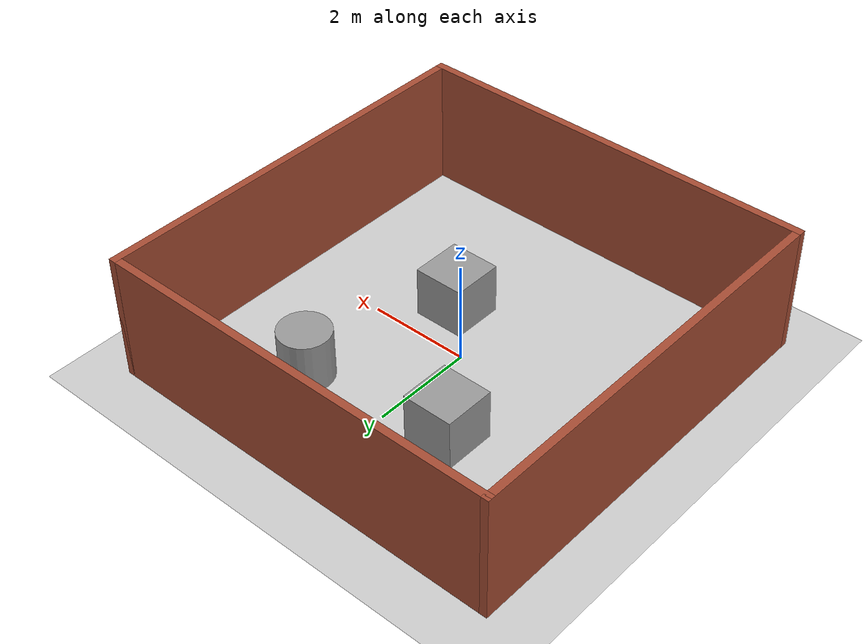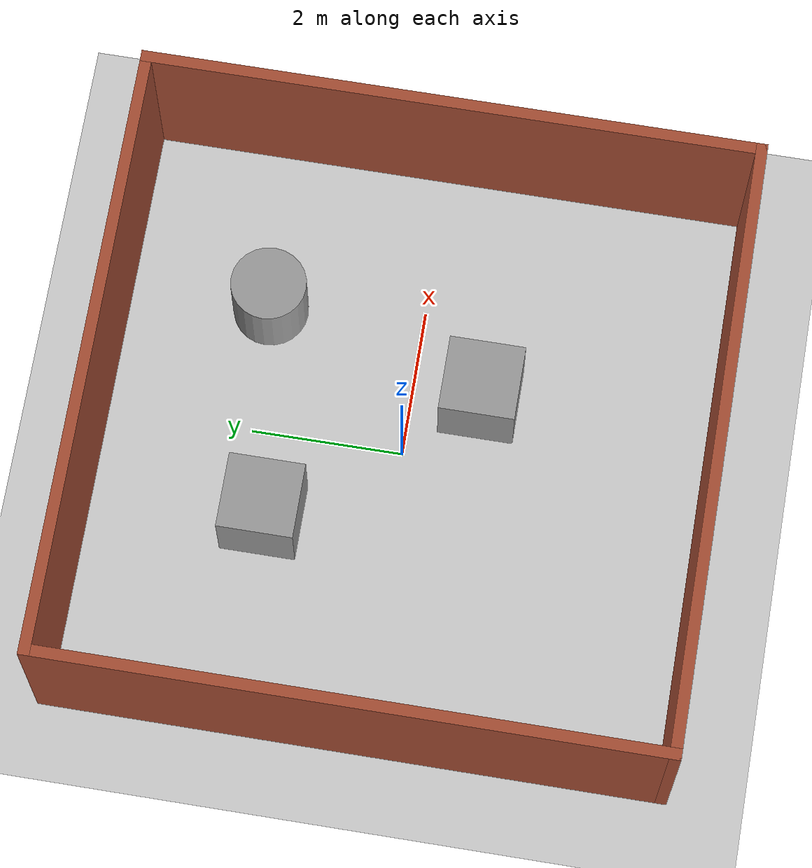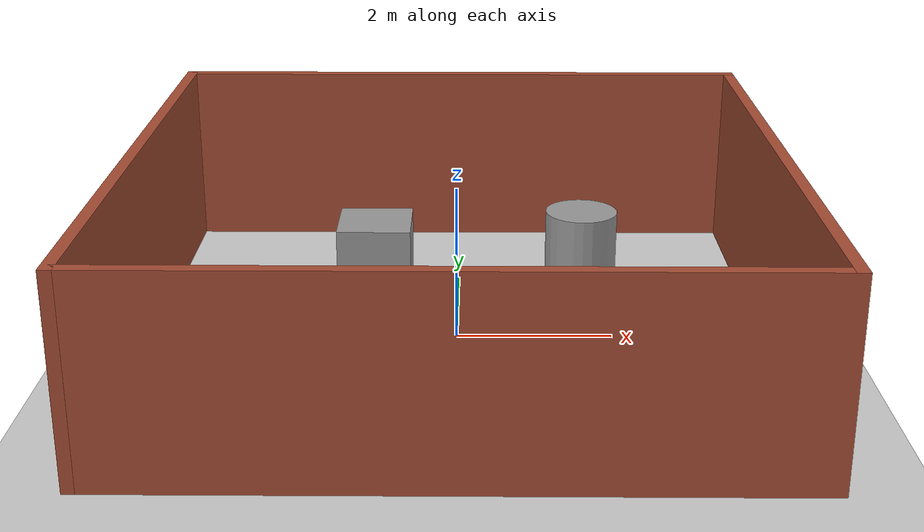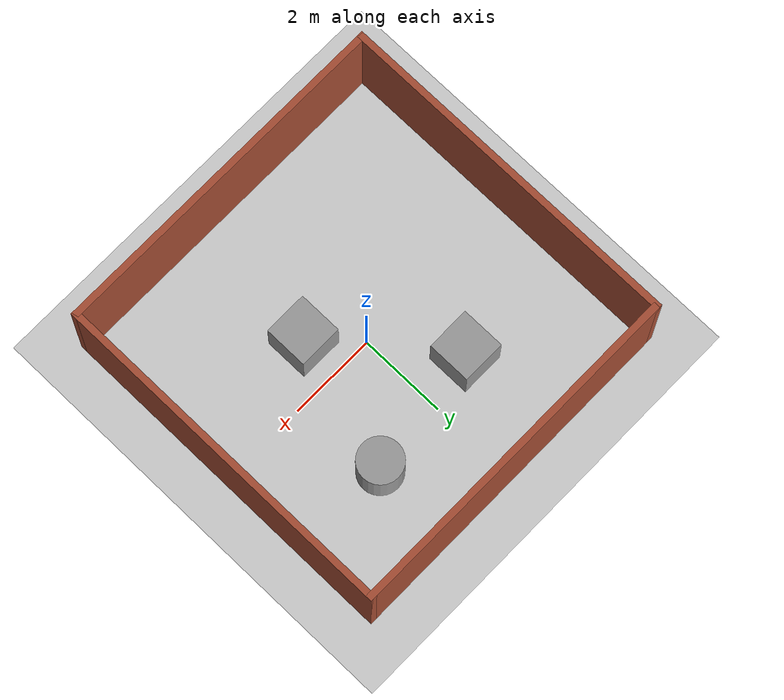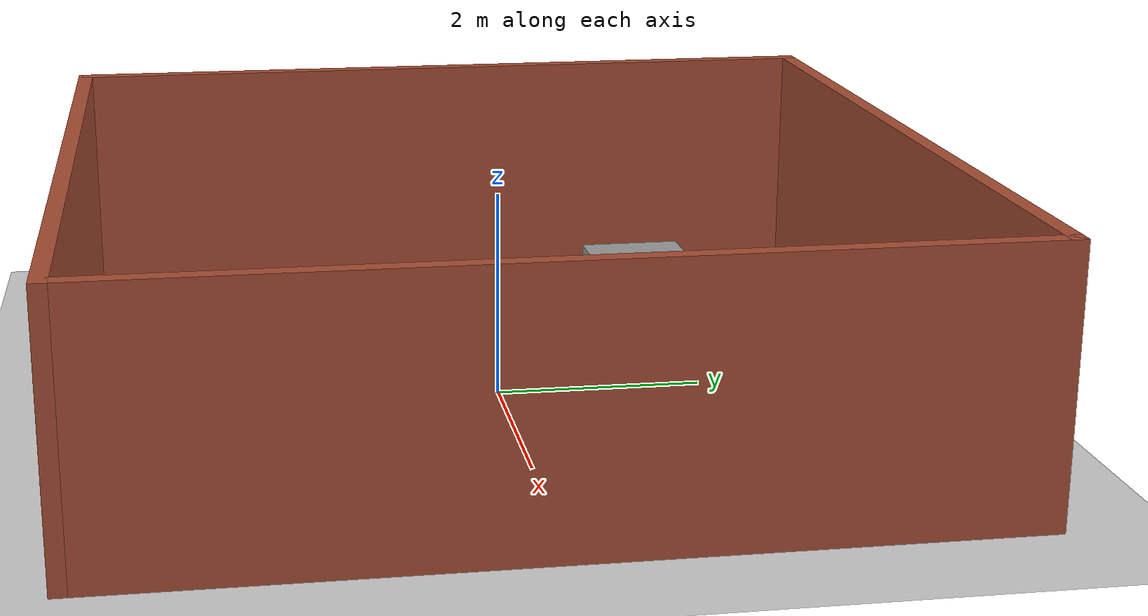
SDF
<sdf version="1.6">
 <world name="default">
  <light name="sun" type="directional">
   <pose>0 0 10 0 -0 0</pose>
   <diffuse>0.8 0.8 0.8 1</diffuse>
   <specular>0.2 0.2 0.2 1</specular>
   <attenuation>
    <range>1000</range>
    <constant>0.9</constant>
    <linear>0.01</linear>
    <quadratic>0.001</quadratic>
   </attenuation>
   <direction>-0.5 0.1 -0.9</direction>
  </light>
  <model name="ground_plane">
   <static>1</static>
   <link name="link">
    <collision name="collision">
     <geometry><plane><normal>0 0 1</normal><size>100 100</size></plane></geometry>
     <surface><friction><ode><mu>100</mu><mu2>50</mu2></ode></friction></surface>
    </collision>
    <visual name="visual">
     <cast_shadows>0</cast_shadows>
     <geometry><plane><normal>0 0 1</normal><size>100 100</size></plane></geometry>
     <material>
      <script><uri>file://media/materials/scripts/gazebo.material</uri><name>Gazebo/Grey</name></script>
     </material>
    </visual>
   </link>
  </model>
  <gravity>0 0 -9.8</gravity>
  <magnetic_field>6e-06 2.3e-05 -4.2e-05</magnetic_field>
  <atmosphere type="adiabatic"/>
  <physics name="default_physics" default="0" type="ode">
   <max_step_size>0.001</max_step_size>
   <real_time_factor>1</real_time_factor>
   <real_time_update_rate>1000</real_time_update_rate>
  </physics>
  <scene><ambient>0.4 0.4 0.4 1</ambient><background>0.7 0.7 0.7 1</background><shadows>1</shadows></scene>
  <spherical_coordinates>
   <surface_model>EARTH_WGS84</surface_model>
   <latitude_deg>0</latitude_deg>
   <longitude_deg>0</longitude_deg>
   <elevation>0</elevation>
   <heading_deg>0</heading_deg>
  </spherical_coordinates>
  <model name="8x8wall">
   <link name="Wall_0">
    <collision name="Wall_0_Collision">
     <geometry><box><size>8.15 0.15 2.5</size></box></geometry>
     <pose>0 0 1.25 0 -0 0</pose>
    </collision>
    <visual name="Wall_0_Visual">
     <pose>0 0 1.25 0 -0 0</pose>
     <geometry><box><size>8.15 0.15 2.5</size></box></geometry>
     <material>
      <script><uri>file://media/materials/scripts/gazebo.material</uri><name>Gazebo/Bricks</name></script>
      <ambient>1 1 1 1</ambient>
     </material>
     <meta><layer>0</layer></meta>
    </visual>
    <pose>-4 0 0 0 -0 1.5708</pose>
   </link>
   <link name="Wall_1">
    <collision name="Wall_1_Collision">
     <geometry><box><size>8.15 0.15 2.5</size></box></geometry>
     <pose>0 0 1.25 0 -0 0</pose>
    </collision>
    <visual name="Wall_1_Visual">
     <pose>0 0 1.25 0 -0 0</pose>
     <geometry><box><size>8.15 0.15 2.5</size></box></geometry>
     <material>
      <script><uri>file://media/materials/scripts/gazebo.material</uri><name>Gazebo/Bricks</name></script>
      <ambient>1 1 1 1</ambient>
     </material>
     <meta><layer>0</layer></meta>
    </visual>
    <pose>0 4 0 0 -0 0</pose>
   </link>
   <link name="Wall_2">
    <collision name="Wall_2_Collision">
     <geometry><box><size>8.15 0.15 2.5</size></box></geometry>
     <pose>0 0 1.25 0 -0 0</pose>
    </collision>
    <visual name="Wall_2_Visual">
     <pose>0 0 1.25 0 -0 0</pose>
     <geometry><box><size>8.15 0.15 2.5</size></box></geometry>
     <material>
      <script><uri>file://media/materials/scripts/gazebo.material</uri><name>Gazebo/Bricks</name></script>
      <ambient>1 1 1 1</ambient>
     </material>
     <meta><layer>0</layer></meta>
    </visual>
    <pose>4 0 0 0 -0 -1.5708</pose>
   </link>
   <link name="Wall_3">
    <collision name="Wall_3_Collision">
     <geometry><box><size>8.15 0.15 2.5</size></box></geometry>
     <pose>0 0 1.25 0 -0 0</pose>
    </collision>
    <visual name="Wall_3_Visual">
     <pose>0 0 1.25 0 -0 0</pose>
     <geometry><box><size>8.15 0.15 2.5</size></box></geometry>
     <material>
      <script><uri>file://media/materials/scripts/gazebo.material</uri><name>Gazebo/Bricks</name></script>
      <ambient>1 1 1 1</ambient>
     </material>
     <meta><layer>0</layer></meta>
    </visual>
    <pose>0 -4 0 0 -0 3.14159</pose>
   </link>
   <static>1</static>
  </model>
  <model name="unit_box_1">
   <pose>0.89081 -0.904034 0.499995 -1e-05 -0 5e-06</pose>
   <link name="link">
    <inertial>
     <mass>1</mass>
     <inertia>
      <ixx>0.166667</ixx>
      <ixy>0</ixy>
      <ixz>0</ixz>
      <iyy>0.166667</iyy>
      <iyz>0</iyz>
      <izz>0.166667</izz>
     </inertia>
    </inertial>
    <collision name="collision"><geometry><box><size>1 1 1</size></box></geometry></collision>
    <visual name="visual">
     <geometry><box><size>1 1 1</size></box></geometry>
     <material>
      <script><name>Gazebo/Grey</name><uri>file://media/materials/scripts/gazebo.material</uri></script>
     </material>
    </visual>
   </link>
  </model>
  <model name="unit_box_2">
   <pose>-1.14469 1.64845 0.499995 0 1e-05 -5e-06</pose>
   <link name="link">
    <inertial>
     <mass>1</mass>
     <inertia>
      <ixx>0.166667</ixx>
      <ixy>0</ixy>
      <ixz>0</ixz>
      <iyy>0.166667</iyy>
      <iyz>0</iyz>
      <izz>0.166667</izz>
     </inertia>
    </inertial>
    <collision name="collision"><geometry><box><size>1 1 1</size></box></geometry></collision>
    <visual name="visual">
     <geometry><box><size>1 1 1</size></box></geometry>
     <material>
      <script><name>Gazebo/Grey</name><uri>file://media/materials/scripts/gazebo.material</uri></script>
     </material>
    </visual>
   </link>
  </model>
  <model name="unit_cylinder">
   <pose>1.72754 2.05584 0.499997 3e-06 4e-06 -0</pose>
   <link name="link">
    <inertial>
     <mass>1</mass>
     <inertia><ixx>0.145833</ixx><ixy>0</ixy><ixz>0</ixz><iyy>0.145833</iyy><iyz>0</iyz><izz>0.125</izz></inertia>
    </inertial>
    <collision name="collision">
     <geometry><cylinder><radius>0.5</radius><length>1</length></cylinder></geometry>
    </collision>
    <visual name="visual">
     <geometry><cylinder><radius>0.5</radius><length>1</length></cylinder></geometry>
     <material>
      <script><name>Gazebo/Grey</name><uri>file://media/materials/scripts/gazebo.material</uri></script>
     </material>
    </visual>
   </link>
  </model>
 </world>
</sdf>
